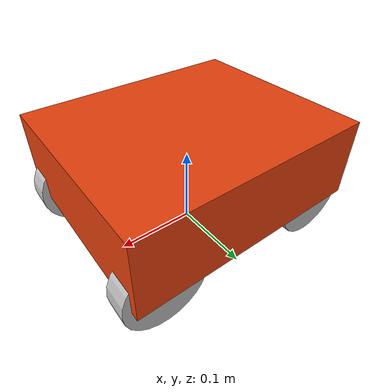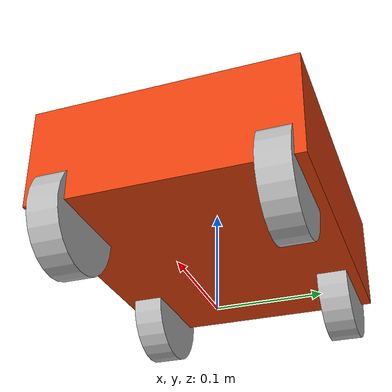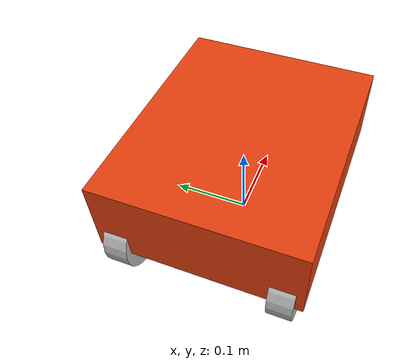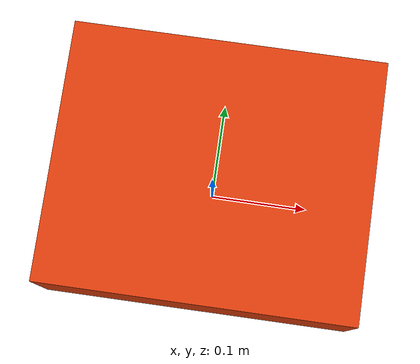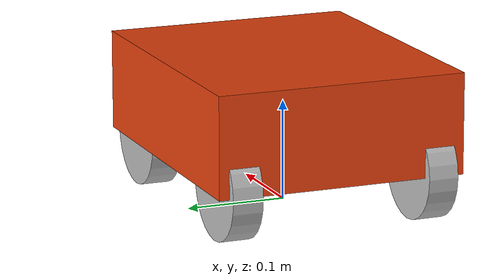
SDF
<?xml version="1.0"?>
<sdf version="1.9">
  <model name="rescuebot" xmlns:gz="http://gazebosim.org/schema">
    <self_collide>false</self_collide>
    <link name="base_link">
      <pose>0 0 0.10 0 0 0</pose>
      <inertial><mass>3.0</mass><inertia><ixx>0.03</ixx><iyy>0.04</iyy><izz>0.06</izz></inertia></inertial>
      <visual name="body"><geometry><box><size>0.30 0.25 0.10</size></box></geometry><material><diffuse>0.9 0.25 0.05 1</diffuse></material></visual>
      <collision name="body"><geometry><box><size>0.30 0.25 0.10</size></box></geometry></collision>
    </link>

    <link name="front_left_wheel_link">
      <pose>0.11 0.10 0.05 0 0 0</pose>
      <inertial><mass>0.15</mass><inertia><ixx>0.0002</ixx><iyy>0.0002</iyy><izz>0.0002</izz></inertia></inertial>
      <visual name="wheel"><pose>0 0 0 1.57079632679 0 0</pose><geometry><cylinder><radius>0.05</radius><length>0.03</length></cylinder></geometry></visual>
      <!-- Anisotropic contact approximates the free roller direction. -->
      <collision name="wheel">
        <geometry><sphere><radius>0.05</radius></sphere></geometry>
        <surface><friction><ode><mu>1.0</mu><mu2>0.0</mu2><fdir1 gz:expressed_in="base_link">1 -1 0</fdir1></ode></friction></surface>
      </collision>
    </link>
    <link name="front_right_wheel_link">
      <pose>0.11 -0.10 0.05 0 0 0</pose>
      <inertial><mass>0.15</mass><inertia><ixx>0.0002</ixx><iyy>0.0002</iyy><izz>0.0002</izz></inertia></inertial>
      <visual name="wheel"><pose>0 0 0 1.57079632679 0 0</pose><geometry><cylinder><radius>0.05</radius><length>0.03</length></cylinder></geometry></visual>
      <!-- Anisotropic contact approximates the free roller direction. -->
      <collision name="wheel">
        <geometry><sphere><radius>0.05</radius></sphere></geometry>
        <surface><friction><ode><mu>1.0</mu><mu2>0.0</mu2><fdir1 gz:expressed_in="base_link">1 1 0</fdir1></ode></friction></surface>
      </collision>
    </link>
    <link name="rear_left_wheel_link">
      <pose>-0.11 0.10 0.05 0 0 0</pose>
      <inertial><mass>0.15</mass><inertia><ixx>0.0002</ixx><iyy>0.0002</iyy><izz>0.0002</izz></inertia></inertial>
      <visual name="wheel"><pose>0 0 0 1.57079632679 0 0</pose><geometry><cylinder><radius>0.05</radius><length>0.03</length></cylinder></geometry></visual>
      <!-- Anisotropic contact approximates the free roller direction. -->
      <collision name="wheel">
        <geometry><sphere><radius>0.05</radius></sphere></geometry>
        <surface><friction><ode><mu>1.0</mu><mu2>0.0</mu2><fdir1 gz:expressed_in="base_link">1 1 0</fdir1></ode></friction></surface>
      </collision>
    </link>
    <link name="rear_right_wheel_link">
      <pose>-0.11 -0.10 0.05 0 0 0</pose>
      <inertial><mass>0.15</mass><inertia><ixx>0.0002</ixx><iyy>0.0002</iyy><izz>0.0002</izz></inertia></inertial>
      <visual name="wheel"><pose>0 0 0 1.57079632679 0 0</pose><geometry><cylinder><radius>0.05</radius><length>0.03</length></cylinder></geometry></visual>
      <!-- Anisotropic contact approximates the free roller direction. -->
      <collision name="wheel">
        <geometry><sphere><radius>0.05</radius></sphere></geometry>
        <surface><friction><ode><mu>1.0</mu><mu2>0.0</mu2><fdir1 gz:expressed_in="base_link">1 -1 0</fdir1></ode></friction></surface>
      </collision>
    </link>

    <joint name="front_left_wheel_joint" type="revolute"><parent>base_link</parent><child>front_left_wheel_link</child><axis><xyz>0 1 0</xyz><limit><lower>-1e16</lower><upper>1e16</upper></limit></axis></joint>
    <joint name="front_right_wheel_joint" type="revolute"><parent>base_link</parent><child>front_right_wheel_link</child><axis><xyz>0 1 0</xyz><limit><lower>-1e16</lower><upper>1e16</upper></limit></axis></joint>
    <joint name="rear_left_wheel_joint" type="revolute"><parent>base_link</parent><child>rear_left_wheel_link</child><axis><xyz>0 1 0</xyz><limit><lower>-1e16</lower><upper>1e16</upper></limit></axis></joint>
    <joint name="rear_right_wheel_joint" type="revolute"><parent>base_link</parent><child>rear_right_wheel_link</child><axis><xyz>0 1 0</xyz><limit><lower>-1e16</lower><upper>1e16</upper></limit></axis></joint>

    <link name="lidar_link"><pose>0 0 0.16 0 0 0</pose><sensor name="lidar" type="gpu_lidar"><always_on>1</always_on><update_rate>10</update_rate><topic>/model/rescuebot/scan</topic><gz_frame_id>lidar_link</gz_frame_id><lidar><scan><horizontal><samples>720</samples><resolution>1</resolution><min_angle>-3.14159</min_angle><max_angle>3.14159</max_angle></horizontal></scan><range><min>0.12</min><max>8.0</max><resolution>0.01</resolution></range></lidar></sensor></link>
    <joint name="lidar_joint" type="fixed"><parent>base_link</parent><child>lidar_link</child></joint>
    <link name="imu_link"><pose>0 0 0.08 0 0 0</pose><sensor name="imu" type="imu"><always_on>1</always_on><update_rate>50</update_rate><topic>/model/rescuebot/imu</topic><gz_frame_id>imu_link</gz_frame_id></sensor></link>
    <joint name="imu_joint" type="fixed"><parent>base_link</parent><child>imu_link</child></joint>
    <link name="ai_camera_link"><pose>0.15 0 0.18 0 0 0</pose></link><joint name="ai_camera_joint" type="fixed"><parent>base_link</parent><child>ai_camera_link</child></joint>
    <link name="logitech_camera_link"><pose>0.15 0 0.19 0 0 0</pose></link><joint name="logitech_camera_joint" type="fixed"><parent>base_link</parent><child>logitech_camera_link</child></joint>

    <plugin filename="gz-sim-mecanum-drive-system" name="gz::sim::systems::MecanumDrive">
      <front_left_joint>front_left_wheel_joint</front_left_joint>
      <front_right_joint>front_right_wheel_joint</front_right_joint>
      <back_left_joint>rear_left_wheel_joint</back_left_joint>
      <back_right_joint>rear_right_wheel_joint</back_right_joint>
      <wheel_separation>0.20</wheel_separation><wheelbase>0.22</wheelbase><wheel_radius>0.05</wheel_radius>
      <topic>/model/rescuebot/cmd_vel</topic><odom_topic>/model/rescuebot/odometry</odom_topic><odom_publish_frequency>30</odom_publish_frequency>
      <frame_id>odom</frame_id><child_frame_id>base_link</child_frame_id>
    </plugin>
  </model>
</sdf>
